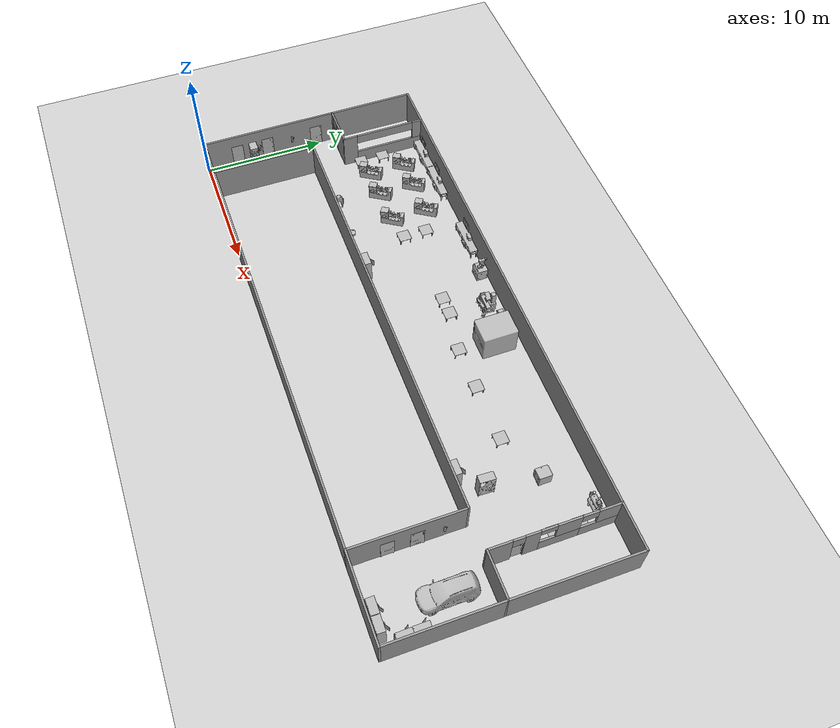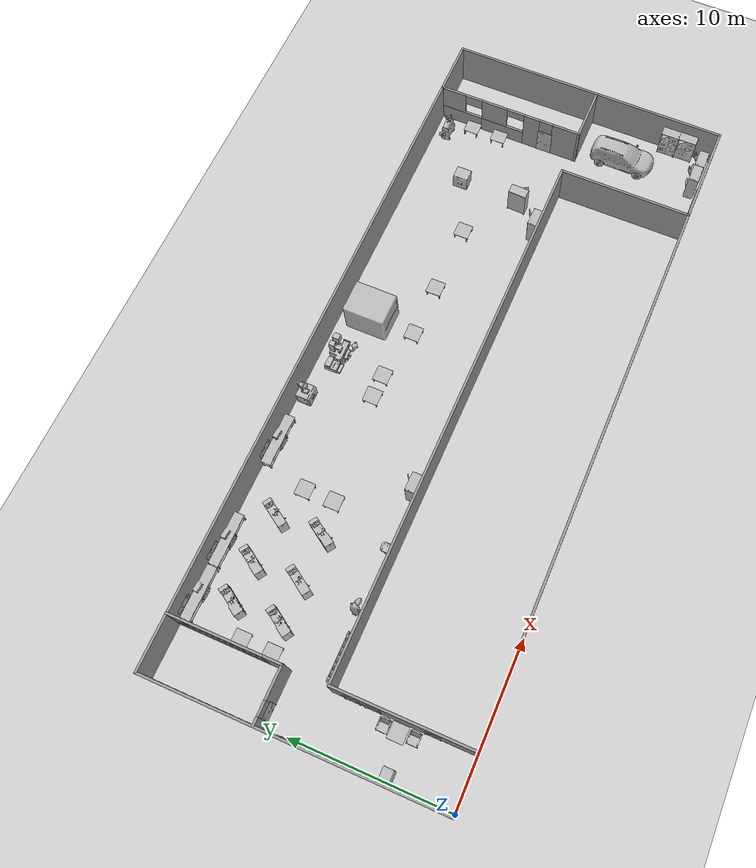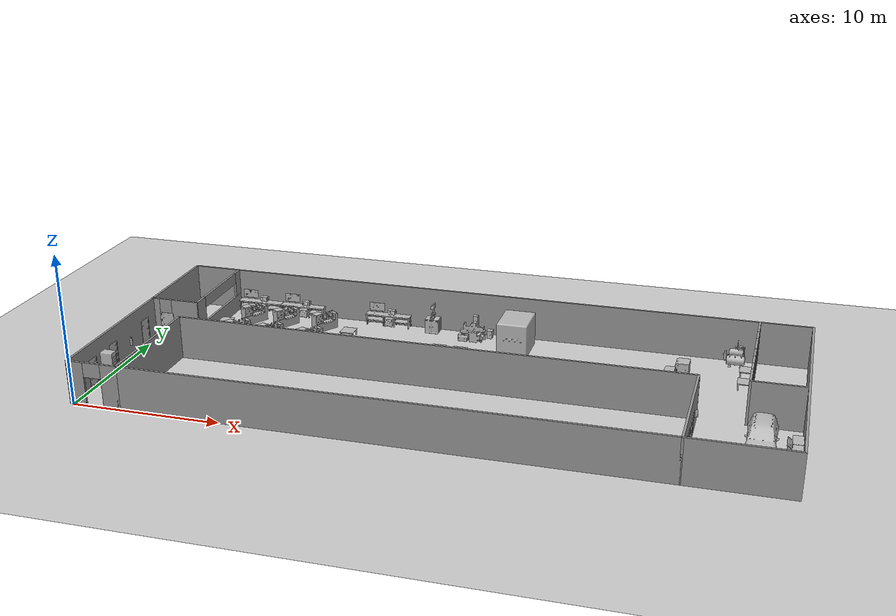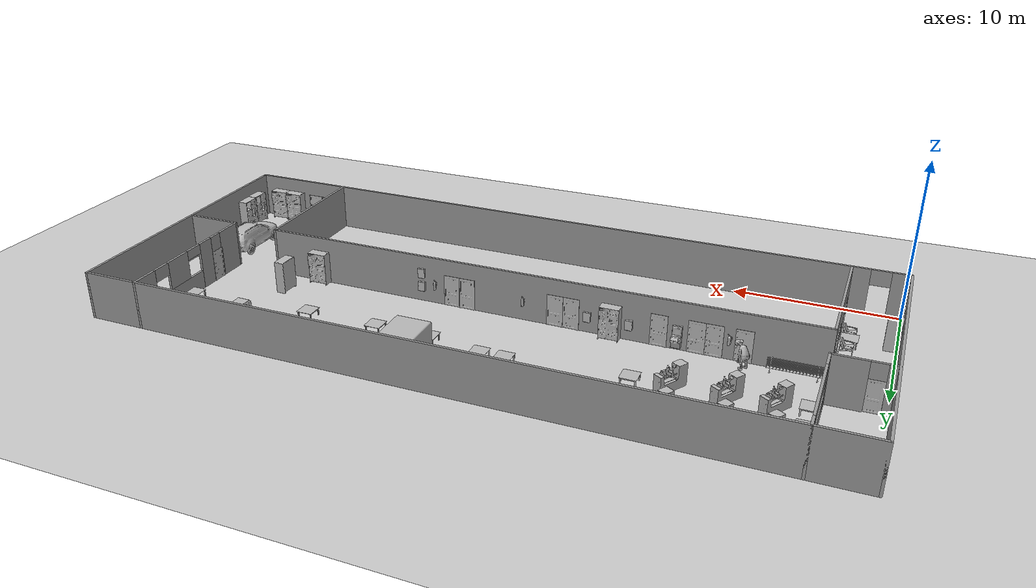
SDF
<sdf version="1.7">
 <world name="default">
  <light name="sun" type="directional">
   <pose>0 0 10 0 -0 0</pose>
   <diffuse>0.8 0.8 0.8 1</diffuse>
   <specular>0.2 0.2 0.2 1</specular>
   <attenuation>
    <range>1000</range>
    <constant>0.9</constant>
    <linear>0.01</linear>
    <quadratic>0.001</quadratic>
   </attenuation>
   <direction>-0.5 0.1 -0.9</direction>
   <spot><inner_angle>0</inner_angle><outer_angle>0</outer_angle><falloff>0</falloff></spot>
  </light>
  <model name="ground_plane">
   <static>1</static>
   <link name="link">
    <collision name="collision">
     <geometry><plane><normal>0 0 1</normal><size>100 100</size></plane></geometry>
     <surface>
      <contact><collide_bitmask>65535</collide_bitmask></contact>
      <friction><ode><mu>100</mu><mu2>50</mu2></ode></friction>
     </surface>
    </collision>
    <visual name="visual">
     <cast_shadows>0</cast_shadows>
     <geometry><plane><normal>0 0 1</normal><size>100 100</size></plane></geometry>
     <material>
      <script><uri>file://media/materials/scripts/gazebo.material</uri><name>Gazebo/Grey</name></script>
     </material>
    </visual>
   </link>
  </model>
  <gravity>0 0 -9.8</gravity>
  <magnetic_field>6e-06 2.3e-05 -4.2e-05</magnetic_field>
  <atmosphere type="adiabatic"/>
  <physics type="ode">
   <max_step_size>0.001</max_step_size>
   <real_time_factor>1</real_time_factor>
   <real_time_update_rate>1000</real_time_update_rate>
  </physics>
  <scene><ambient>0.4 0.4 0.4 1</ambient><background>0.7 0.7 0.7 1</background><shadows>1</shadows></scene>
  <spherical_coordinates>
   <surface_model>EARTH_WGS84</surface_model>
   <latitude_deg>0</latitude_deg>
   <longitude_deg>0</longitude_deg>
   <elevation>0</elevation>
   <heading_deg>0</heading_deg>
  </spherical_coordinates>
  <model name="laboratótio_de_usinagem_modelo">
   <pose>22.3264 9.2334 0 0 -0 0</pose>
   <link name="Wall_11">
    <collision name="Wall_11_Collision">
     <geometry><box><size>18.5 0.15 3</size></box></geometry>
     <pose>0 0 1.5 0 -0 0</pose>
    </collision>
    <visual name="Wall_11_Visual">
     <pose>0 0 1.5 0 -0 0</pose>
     <geometry><box><size>18.5 0.15 3</size></box></geometry>
     <material>
      <script><uri>file://media/materials/scripts/gazebo.material</uri><name>Gazebo/Grey</name></script>
      <ambient>1 1 1 1</ambient>
     </material>
     <meta><layer>0</layer></meta>
    </visual>
    <pose>22.5 0 0 0 -0 -1.5708</pose>
   </link>
   <link name="Wall_13">
    <collision name="Wall_13_Collision">
     <geometry><box><size>6.75 0.15 3</size></box></geometry>
     <pose>0 0 1.5 0 -0 0</pose>
    </collision>
    <visual name="Wall_13_Visual">
     <pose>0 0 1.5 0 -0 0</pose>
     <geometry><box><size>6.75 0.15 3</size></box></geometry>
     <material>
      <script><uri>file://media/materials/scripts/gazebo.material</uri><name>Gazebo/Grey</name></script>
      <ambient>1 1 1 1</ambient>
     </material>
     <meta><layer>0</layer></meta>
    </visual>
    <pose>19.2 -9.175 0 0 -0 3.14159</pose>
   </link>
   <link name="Wall_15">
    <collision name="Wall_15_Collision">
     <geometry><box><size>8.75 0.15 3</size></box></geometry>
     <pose>0 0 1.5 0 -0 0</pose>
    </collision>
    <visual name="Wall_15_Visual">
     <pose>0 0 1.5 0 -0 0</pose>
     <geometry><box><size>8.75 0.15 3</size></box></geometry>
     <material>
      <script><uri>file://media/materials/scripts/gazebo.material</uri><name>Gazebo/Grey</name></script>
      <ambient>1 1 1 1</ambient>
     </material>
     <meta><layer>0</layer></meta>
    </visual>
    <pose>15.9 -4.875 0 0 -0 1.5708</pose>
   </link>
   <link name="Wall_17">
    <collision name="Wall_17_Collision">
     <geometry><box><size>35.15 0.15 3</size></box></geometry>
     <pose>0 0 1.5 0 -0 0</pose>
    </collision>
    <visual name="Wall_17_Visual">
     <pose>0 0 1.5 0 -0 0</pose>
     <geometry><box><size>35.15 0.15 3</size></box></geometry>
     <material>
      <script><uri>file://media/materials/scripts/gazebo.material</uri><name>Gazebo/Grey</name></script>
      <ambient>1 1 1 1</ambient>
     </material>
     <meta><layer>0</layer></meta>
    </visual>
    <pose>-1.6 -0.575 0 0 -0 3.14159</pose>
   </link>
   <link name="Wall_19">
    <collision name="Wall_19_Collision">
     <geometry><box><size>35.15 0.15 3</size></box></geometry>
     <pose>0 0 1.5 0 -0 0</pose>
    </collision>
    <visual name="Wall_19_Visual">
     <pose>0 0 1.5 0 -0 0</pose>
     <geometry><box><size>35.15 0.15 3</size></box></geometry>
     <material>
      <script><uri>file://media/materials/scripts/gazebo.material</uri><name>Gazebo/Grey</name></script>
      <ambient>1 1 1 1</ambient>
     </material>
     <meta><layer>0</layer></meta>
    </visual>
    <pose>-1.6 -9.175 0 0 -0 0</pose>
   </link>
   <link name="Wall_21">
    <pose>-20.8 2.175 0 0 -0 0</pose>
    <visual name="Wall_21_Visual_0">
     <pose>-1.47924 0 1.5 0 -0 0</pose>
     <geometry><box><size>0.591518 0.15 3</size></box></geometry>
     <material>
      <script><uri>file://media/materials/scripts/gazebo.material</uri><name>Gazebo/Grey</name></script>
      <ambient>1 1 1 1</ambient>
     </material>
     <meta><layer>0</layer></meta>
    </visual>
    <collision name="Wall_21_Collision_0">
     <geometry><box><size>0.591518 0.15 3</size></box></geometry>
     <pose>-1.47924 0 1.5 0 -0 0</pose>
    </collision>
    <visual name="Wall_21_Visual_1">
     <pose>0.745759 0 1.5 0 -0 0</pose>
     <geometry><box><size>2.05848 0.15 3</size></box></geometry>
     <material>
      <script><uri>file://media/materials/scripts/gazebo.material</uri><name>Gazebo/Grey</name></script>
      <ambient>1 1 1 1</ambient>
     </material>
     <meta><layer>0</layer></meta>
    </visual>
    <collision name="Wall_21_Collision_1">
     <geometry><box><size>2.05848 0.15 3</size></box></geometry>
     <pose>0.745759 0 1.5 0 -0 0</pose>
    </collision>
    <visual name="Wall_21_Visual_2">
     <pose>-0.733482 0 2.5 0 -0 0</pose>
     <geometry><box><size>0.9 0.15 1</size></box></geometry>
     <material>
      <script><uri>file://media/materials/scripts/gazebo.material</uri><name>Gazebo/Grey</name></script>
      <ambient>1 1 1 1</ambient>
     </material>
     <meta><layer>0</layer></meta>
    </visual>
    <collision name="Wall_21_Collision_2">
     <geometry><box><size>0.9 0.15 1</size></box></geometry>
     <pose>-0.733482 0 2.5 0 -0 0</pose>
    </collision>
   </link>
   <link name="Wall_23">
    <pose>-19.1 5.675 0 0 -0 1.5708</pose>
    <visual name="Wall_23_Visual_0">
     <pose>-2.9625 0 1.5 0 -0 0</pose>
     <geometry><box><size>1.225 0.15 3</size></box></geometry>
     <material>
      <script><uri>file://media/materials/scripts/gazebo.material</uri><name>Gazebo/Grey</name></script>
      <ambient>1 1 1 1</ambient>
     </material>
     <meta><layer>0</layer></meta>
    </visual>
    <collision name="Wall_23_Collision_0">
     <geometry><box><size>1.225 0.15 3</size></box></geometry>
     <pose>-2.9625 0 1.5 0 -0 0</pose>
    </collision>
    <visual name="Wall_23_Visual_1">
     <pose>0.6125 0 0.6 0 -0 0</pose>
     <geometry><box><size>5.925 0.15 1.2</size></box></geometry>
     <material>
      <script><uri>file://media/materials/scripts/gazebo.material</uri><name>Gazebo/Grey</name></script>
      <ambient>1 1 1 1</ambient>
     </material>
     <meta><layer>0</layer></meta>
    </visual>
    <collision name="Wall_23_Collision_1">
     <geometry><box><size>5.925 0.15 1.2</size></box></geometry>
     <pose>0.6125 0 0.6 0 -0 0</pose>
    </collision>
    <visual name="Wall_23_Visual_2">
     <pose>3.1125 0 2.1 0 -0 0</pose>
     <geometry><box><size>0.925 0.15 1.8</size></box></geometry>
     <material>
      <script><uri>file://media/materials/scripts/gazebo.material</uri><name>Gazebo/Grey</name></script>
      <ambient>1 1 1 1</ambient>
     </material>
     <meta><layer>0</layer></meta>
    </visual>
    <collision name="Wall_23_Collision_2">
     <geometry><box><size>0.925 0.15 1.8</size></box></geometry>
     <pose>3.1125 0 2.1 0 -0 0</pose>
    </collision>
    <visual name="Wall_23_Visual_3">
     <pose>0.15 0 2.6 0 -0 0</pose>
     <geometry><box><size>5 0.15 0.8</size></box></geometry>
     <material>
      <script><uri>file://media/materials/scripts/gazebo.material</uri><name>Gazebo/Grey</name></script>
      <ambient>1 1 1 1</ambient>
     </material>
     <meta><layer>0</layer></meta>
    </visual>
    <collision name="Wall_23_Collision_3">
     <geometry><box><size>5 0.15 0.8</size></box></geometry>
     <pose>0.15 0 2.6 0 -0 0</pose>
    </collision>
   </link>
   <link name="Wall_25">
    <collision name="Wall_25_Collision">
     <geometry><box><size>3.65 0.15 3</size></box></geometry>
     <pose>0 0 1.5 0 -0 0</pose>
    </collision>
    <visual name="Wall_25_Visual">
     <pose>0 0 1.5 0 -0 0</pose>
     <geometry><box><size>3.65 0.15 3</size></box></geometry>
     <material>
      <script><uri>file://media/materials/scripts/gazebo.material</uri><name>Gazebo/Grey</name></script>
      <ambient>1 1 1 1</ambient>
     </material>
     <meta><layer>0</layer></meta>
    </visual>
    <pose>20.75 -0.575 0 0 -0 3.14159</pose>
   </link>
   <link name="Wall_27">
    <pose>19 4.3 0 0 -0 1.5708</pose>
    <visual name="Wall_27_Visual_0">
     <pose>-3.9989 0 1.5 0 -0 0</pose>
     <geometry><box><size>1.90221 0.15 3</size></box></geometry>
     <material>
      <script><uri>file://media/materials/scripts/gazebo.material</uri><name>Gazebo/Grey</name></script>
      <ambient>1 1 1 1</ambient>
     </material>
     <meta><layer>0</layer></meta>
    </visual>
    <collision name="Wall_27_Collision_0">
     <geometry><box><size>1.90221 0.15 3</size></box></geometry>
     <pose>-3.9989 0 1.5 0 -0 0</pose>
    </collision>
    <visual name="Wall_27_Visual_1">
     <pose>-1.58963 0 1.5 0 -0 0</pose>
     <geometry><box><size>1.11632 0.15 3</size></box></geometry>
     <material>
      <script><uri>file://media/materials/scripts/gazebo.material</uri><name>Gazebo/Grey</name></script>
      <ambient>1 1 1 1</ambient>
     </material>
     <meta><layer>0</layer></meta>
    </visual>
    <collision name="Wall_27_Collision_1">
     <geometry><box><size>1.11632 0.15 3</size></box></geometry>
     <pose>-1.58963 0 1.5 0 -0 0</pose>
    </collision>
    <visual name="Wall_27_Visual_2">
     <pose>0.470975 0 0.6005 0 -0 0</pose>
     <geometry><box><size>3.00489 0.15 1.201</size></box></geometry>
     <material>
      <script><uri>file://media/materials/scripts/gazebo.material</uri><name>Gazebo/Grey</name></script>
      <ambient>1 1 1 1</ambient>
     </material>
     <meta><layer>0</layer></meta>
    </visual>
    <collision name="Wall_27_Collision_2">
     <geometry><box><size>3.00489 0.15 1.201</size></box></geometry>
     <pose>0.470975 0 0.6005 0 -0 0</pose>
    </collision>
    <visual name="Wall_27_Visual_3">
     <pose>3.46171 0 0.6005 0 -0 0</pose>
     <geometry><box><size>2.97658 0.15 1.201</size></box></geometry>
     <material>
      <script><uri>file://media/materials/scripts/gazebo.material</uri><name>Gazebo/Grey</name></script>
      <ambient>1 1 1 1</ambient>
     </material>
     <meta><layer>0</layer></meta>
    </visual>
    <collision name="Wall_27_Collision_3">
     <geometry><box><size>2.97658 0.15 1.201</size></box></geometry>
     <pose>3.46171 0 0.6005 0 -0 0</pose>
    </collision>
    <visual name="Wall_27_Visual_4">
     <pose>4.06171 0 2.1005 0 -0 0</pose>
     <geometry><box><size>1.77658 0.15 1.799</size></box></geometry>
     <material>
      <script><uri>file://media/materials/scripts/gazebo.material</uri><name>Gazebo/Grey</name></script>
      <ambient>1 1 1 1</ambient>
     </material>
     <meta><layer>0</layer></meta>
    </visual>
    <collision name="Wall_27_Collision_4">
     <geometry><box><size>1.77658 0.15 1.799</size></box></geometry>
     <pose>4.06171 0 2.1005 0 -0 0</pose>
    </collision>
    <visual name="Wall_27_Visual_5">
     <pose>1.07098 0 2.1005 0 -0 0</pose>
     <geometry><box><size>1.80489 0.15 1.799</size></box></geometry>
     <material>
      <script><uri>file://media/materials/scripts/gazebo.material</uri><name>Gazebo/Grey</name></script>
      <ambient>1 1 1 1</ambient>
     </material>
     <meta><layer>0</layer></meta>
    </visual>
    <collision name="Wall_27_Collision_5">
     <geometry><box><size>1.80489 0.15 1.799</size></box></geometry>
     <pose>1.07098 0 2.1005 0 -0 0</pose>
    </collision>
    <visual name="Wall_27_Visual_6">
     <pose>1.07098 0 2.1005 0 -0 0</pose>
     <geometry><box><size>1.80489 0.15 1.799</size></box></geometry>
     <material>
      <script><uri>file://media/materials/scripts/gazebo.material</uri><name>Gazebo/Grey</name></script>
      <ambient>1 1 1 1</ambient>
     </material>
     <meta><layer>0</layer></meta>
    </visual>
    <collision name="Wall_27_Collision_6">
     <geometry><box><size>1.80489 0.15 1.799</size></box></geometry>
     <pose>1.07098 0 2.1005 0 -0 0</pose>
    </collision>
    <visual name="Wall_27_Visual_7">
     <pose>-2.59779 0 2.5 0 -0 0</pose>
     <geometry><box><size>0.9 0.15 1</size></box></geometry>
     <material>
      <script><uri>file://media/materials/scripts/gazebo.material</uri><name>Gazebo/Grey</name></script>
      <ambient>1 1 1 1</ambient>
     </material>
     <meta><layer>0</layer></meta>
    </visual>
    <collision name="Wall_27_Collision_7">
     <geometry><box><size>0.9 0.15 1</size></box></geometry>
     <pose>-2.59779 0 2.5 0 -0 0</pose>
    </collision>
    <visual name="Wall_27_Visual_8">
     <pose>2.57342 0 2.6005 0 -0 0</pose>
     <geometry><box><size>1.2 0.15 0.799</size></box></geometry>
     <material>
      <script><uri>file://media/materials/scripts/gazebo.material</uri><name>Gazebo/Grey</name></script>
      <ambient>1 1 1 1</ambient>
     </material>
     <meta><layer>0</layer></meta>
    </visual>
    <collision name="Wall_27_Collision_8">
     <geometry><box><size>1.2 0.15 0.799</size></box></geometry>
     <pose>2.57342 0 2.6005 0 -0 0</pose>
    </collision>
    <visual name="Wall_27_Visual_9">
     <pose>2.57342 0 2.6005 0 -0 0</pose>
     <geometry><box><size>1.2 0.15 0.799</size></box></geometry>
     <material>
      <script><uri>file://media/materials/scripts/gazebo.material</uri><name>Gazebo/Grey</name></script>
      <ambient>1 1 1 1</ambient>
     </material>
     <meta><layer>0</layer></meta>
    </visual>
    <collision name="Wall_27_Collision_9">
     <geometry><box><size>1.2 0.15 0.799</size></box></geometry>
     <pose>2.57342 0 2.6005 0 -0 0</pose>
    </collision>
    <visual name="Wall_27_Visual_10">
     <pose>-0.431472 0 2.7005 0 -0 0</pose>
     <geometry><box><size>1.2 0.15 0.599</size></box></geometry>
     <material>
      <script><uri>file://media/materials/scripts/gazebo.material</uri><name>Gazebo/Grey</name></script>
      <ambient>1 1 1 1</ambient>
     </material>
     <meta><layer>0</layer></meta>
    </visual>
    <collision name="Wall_27_Collision_10">
     <geometry><box><size>1.2 0.15 0.599</size></box></geometry>
     <pose>-0.431472 0 2.7005 0 -0 0</pose>
    </collision>
   </link>
   <link name="Wall_3">
    <pose>-20.8 -9.175 0 0 -0 0</pose>
    <visual name="Wall_3_Visual_0">
     <pose>-1.18973 0 1.5 0 -0 0</pose>
     <geometry><box><size>1.17054 0.15 3</size></box></geometry>
     <material>
      <script><uri>file://media/materials/scripts/gazebo.material</uri><name>Gazebo/Grey</name></script>
      <ambient>1 1 1 1</ambient>
     </material>
     <meta><layer>0</layer></meta>
    </visual>
    <collision name="Wall_3_Collision_0">
     <geometry><box><size>1.17054 0.15 3</size></box></geometry>
     <pose>-1.18973 0 1.5 0 -0 0</pose>
    </collision>
    <visual name="Wall_3_Visual_1">
     <pose>1.18527 0 1.5 0 -0 0</pose>
     <geometry><box><size>1.17946 0.15 3</size></box></geometry>
     <material>
      <script><uri>file://media/materials/scripts/gazebo.material</uri><name>Gazebo/Grey</name></script>
      <ambient>1 1 1 1</ambient>
     </material>
     <meta><layer>0</layer></meta>
    </visual>
    <collision name="Wall_3_Collision_1">
     <geometry><box><size>1.17946 0.15 3</size></box></geometry>
     <pose>1.18527 0 1.5 0 -0 0</pose>
    </collision>
    <visual name="Wall_3_Visual_2">
     <pose>-0.00446 0 2.5 0 -0 0</pose>
     <geometry><box><size>1.2 0.15 1</size></box></geometry>
     <material>
      <script><uri>file://media/materials/scripts/gazebo.material</uri><name>Gazebo/Grey</name></script>
      <ambient>1 1 1 1</ambient>
     </material>
     <meta><layer>0</layer></meta>
    </visual>
    <collision name="Wall_3_Collision_2">
     <geometry><box><size>1.2 0.15 1</size></box></geometry>
     <pose>-0.00446 0 2.5 0 -0 0</pose>
    </collision>
   </link>
   <link name="Wall_5">
    <collision name="Wall_5_Collision">
     <geometry><box><size>8.75 0.15 3</size></box></geometry>
     <pose>0 0 1.5 0 -0 0</pose>
    </collision>
    <visual name="Wall_5_Visual">
     <pose>0 0 1.5 0 -0 0</pose>
     <geometry><box><size>8.75 0.15 3</size></box></geometry>
     <material>
      <script><uri>file://media/materials/scripts/gazebo.material</uri><name>Gazebo/Grey</name></script>
      <ambient>1 1 1 1</ambient>
     </material>
     <meta><layer>0</layer></meta>
    </visual>
    <pose>-19.1 -4.875 0 0 -0 1.5708</pose>
   </link>
   <link name="Wall_7">
    <collision name="Wall_7_Collision">
     <geometry><box><size>18.5 0.15 3</size></box></geometry>
     <pose>0 0 1.5 0 -0 0</pose>
    </collision>
    <visual name="Wall_7_Visual">
     <pose>0 0 1.5 0 -0 0</pose>
     <geometry><box><size>18.5 0.15 3</size></box></geometry>
     <material>
      <script><uri>file://media/materials/scripts/gazebo.material</uri><name>Gazebo/Grey</name></script>
      <ambient>1 1 1 1</ambient>
     </material>
     <meta><layer>0</layer></meta>
    </visual>
    <pose>-22.5 0 0 0 -0 1.5708</pose>
   </link>
   <link name="Wall_9">
    <collision name="Wall_9_Collision">
     <geometry><box><size>45.15 0.15 3</size></box></geometry>
     <pose>0 0 1.5 0 -0 0</pose>
    </collision>
    <visual name="Wall_9_Visual">
     <pose>0 0 1.5 0 -0 0</pose>
     <geometry><box><size>45.15 0.15 3</size></box></geometry>
     <material>
      <script><uri>file://media/materials/scripts/gazebo.material</uri><name>Gazebo/Grey</name></script>
      <ambient>1 1 1 1</ambient>
     </material>
     <meta><layer>0</layer></meta>
    </visual>
    <pose>0 9.175 0 0 -0 0</pose>
   </link>
   <static>1</static>
  </model>
  <model name="Torno Mecânico">
   <static>1</static>
   <link name="link">
    <collision name="collision">
     <geometry><mesh><uri>model://torno_mecanico/meshes/torno.stl</uri><scale>1 1 1</scale></mesh></geometry>
    </collision>
    <visual name="visual">
     <geometry><mesh><uri>model://torno_mecanico/meshes/torno.stl</uri><scale>1 1 1</scale></mesh></geometry>
    </visual>
   </link>
   <pose>5.5 13 0 0 -0 1</pose>
   <gazebo reference="link"><material>Gazebo/White</material></gazebo>
  </model>
  <model name="Torno Mecânico_clone">
   <static>1</static>
   <link name="link">
    <collision name="collision">
     <geometry><mesh><uri>model://torno_mecanico/meshes/torno.stl</uri><scale>1 1 1</scale></mesh></geometry>
    </collision>
    <visual name="visual">
     <geometry><mesh><uri>model://torno_mecanico/meshes/torno.stl</uri><scale>1 1 1</scale></mesh></geometry>
    </visual>
   </link>
   <pose>5.5 16 0 0 -0 1</pose>
   <gazebo reference="link"><material>Gazebo/White</material></gazebo>
  </model>
  <model name="Torno Mecânico_clone_clone">
   <static>1</static>
   <link name="link">
    <collision name="collision">
     <geometry><mesh><uri>model://torno_mecanico/meshes/torno.stl</uri><scale>1 1 1</scale></mesh></geometry>
    </collision>
    <visual name="visual">
     <geometry><mesh><uri>model://torno_mecanico/meshes/torno.stl</uri><scale>1 1 1</scale></mesh></geometry>
    </visual>
   </link>
   <pose>8 16 0 0 -0 1</pose>
   <gazebo reference="link"><material>Gazebo/White</material></gazebo>
  </model>
  <model name="Torno Mecânico_clone_clone_0">
   <static>1</static>
   <link name="link">
    <collision name="collision">
     <geometry><mesh><uri>model://torno_mecanico/meshes/torno.stl</uri><scale>1 1 1</scale></mesh></geometry>
    </collision>
    <visual name="visual">
     <geometry><mesh><uri>model://torno_mecanico/meshes/torno.stl</uri><scale>1 1 1</scale></mesh></geometry>
    </visual>
   </link>
   <pose>8 13 0 0 -0 1</pose>
   <gazebo reference="link"><material>Gazebo/White</material></gazebo>
  </model>
  <model name="Torno Mecânico_clone_clone_1">
   <static>1</static>
   <link name="link">
    <collision name="collision">
     <geometry><mesh><uri>model://torno_mecanico/meshes/torno.stl</uri><scale>1 1 1</scale></mesh></geometry>
    </collision>
    <visual name="visual">
     <geometry><mesh><uri>model://torno_mecanico/meshes/torno.stl</uri><scale>1 1 1</scale></mesh></geometry>
    </visual>
   </link>
   <pose>11 13 0 0 -0 1</pose>
   <gazebo reference="link"><material>Gazebo/White</material></gazebo>
  </model>
  <model name="Torno Mecânico_clone_clone_2">
   <static>1</static>
   <link name="link">
    <collision name="collision">
     <geometry><mesh><uri>model://torno_mecanico/meshes/torno.stl</uri><scale>1 1 1</scale></mesh></geometry>
    </collision>
    <visual name="visual">
     <geometry><mesh><uri>model://torno_mecanico/meshes/torno.stl</uri><scale>1 1 1</scale></mesh></geometry>
    </visual>
   </link>
   <pose>11 16 0 0 -0 1</pose>
   <gazebo reference="link"><material>Gazebo/White</material></gazebo>
  </model>
  <model name="Bancada">
   <static>1</static>
   <link name="link">
    <collision name="collision">
     <geometry><mesh><uri>model://bancada/meshes/bancada.stl</uri><scale>1 1 1</scale></mesh></geometry>
    </collision>
    <visual name="visual">
     <geometry><mesh><uri>model://bancada/meshes/bancada.stl</uri><scale>1 1 1</scale></mesh></geometry>
    </visual>
   </link>
   <pose>5 18.3 0 0 -0 0</pose>
   <gazebo reference="link"><material>Gazebo/White</material></gazebo>
  </model>
  <model name="Bancada_clone">
   <static>1</static>
   <link name="link">
    <collision name="collision">
     <geometry><mesh><uri>model://bancada/meshes/bancada.stl</uri><scale>1 1 1</scale></mesh></geometry>
    </collision>
    <visual name="visual">
     <geometry><mesh><uri>model://bancada/meshes/bancada.stl</uri><scale>1 1 1</scale></mesh></geometry>
    </visual>
   </link>
   <pose>8.35442 18.3 0 0 -0 0</pose>
   <gazebo reference="link"><material>Gazebo/White</material></gazebo>
  </model>
  <model name="Fresadora">
   <static>1</static>
   <link name="link">
    <collision name="collision">
     <geometry><mesh><uri>model://mesa_de_trabalho/meshes/mesa.stl</uri><scale>1 1 1</scale></mesh></geometry>
    </collision>
    <visual name="visual">
     <geometry><mesh><uri>model://mesa_de_trabalho/meshes/mesa.stl</uri><scale>1 1 1</scale></mesh></geometry>
    </visual>
   </link>
   <pose>3.7 12.7 0 0 -0 1.57</pose>
   <gazebo reference="link"><material>Gazebo/White</material></gazebo>
  </model>
  <model name="Fresadora_clone">
   <static>1</static>
   <link name="link">
    <collision name="collision">
     <geometry><mesh><uri>model://mesa_de_trabalho/meshes/mesa.stl</uri><scale>1 1 1</scale></mesh></geometry>
    </collision>
    <visual name="visual">
     <geometry><mesh><uri>model://mesa_de_trabalho/meshes/mesa.stl</uri><scale>1 1 1</scale></mesh></geometry>
    </visual>
   </link>
   <pose>3.69993 14.6555 0 0 -0 1.57</pose>
   <gazebo reference="link"><material>Gazebo/White</material></gazebo>
  </model>
  <model name="Fresadora_clone_clone">
   <static>1</static>
   <link name="link">
    <collision name="collision">
     <geometry><mesh><uri>model://mesa_de_trabalho/meshes/mesa.stl</uri><scale>1 1 1</scale></mesh></geometry>
    </collision>
    <visual name="visual">
     <geometry><mesh><uri>model://mesa_de_trabalho/meshes/mesa.stl</uri><scale>1 1 1</scale></mesh></geometry>
    </visual>
   </link>
   <pose>13 13.3 0 0 -0 1.57</pose>
   <gazebo reference="link"><material>Gazebo/White</material></gazebo>
  </model>
  <model name="Fresadora_clone_clone_0">
   <static>1</static>
   <link name="link">
    <collision name="collision">
     <geometry><mesh><uri>model://mesa_de_trabalho/meshes/mesa.stl</uri><scale>1 1 1</scale></mesh></geometry>
    </collision>
    <visual name="visual">
     <geometry><mesh><uri>model://mesa_de_trabalho/meshes/mesa.stl</uri><scale>1 1 1</scale></mesh></geometry>
    </visual>
   </link>
   <pose>12.9999 15.2159 0 0 -0 1.57</pose>
   <gazebo reference="link"><material>Gazebo/White</material></gazebo>
  </model>
  <model name="Bancada_clone_clone">
   <static>1</static>
   <link name="link">
    <collision name="collision">
     <geometry><mesh><uri>model://bancada/meshes/bancada.stl</uri><scale>1 1 1</scale></mesh></geometry>
    </collision>
    <visual name="visual">
     <geometry><mesh><uri>model://bancada/meshes/bancada.stl</uri><scale>1 1 1</scale></mesh></geometry>
    </visual>
   </link>
   <pose>15 18.3 0 0 -0 0</pose>
   <gazebo reference="link"><material>Gazebo/White</material></gazebo>
  </model>
  <model name="Fresadora_clone_clone_1">
   <static>1</static>
   <link name="link">
    <collision name="collision">
     <geometry><mesh><uri>model://mesa_de_trabalho/meshes/mesa.stl</uri><scale>1 1 1</scale></mesh></geometry>
    </collision>
    <visual name="visual">
     <geometry><mesh><uri>model://mesa_de_trabalho/meshes/mesa.stl</uri><scale>1 1 1</scale></mesh></geometry>
    </visual>
   </link>
   <pose>20 14 0 0 -0 1.57</pose>
   <gazebo reference="link"><material>Gazebo/White</material></gazebo>
  </model>
  <model name="Fresadora_clone_clone_1_clone">
   <static>1</static>
   <link name="link">
    <collision name="collision">
     <geometry><mesh><uri>model://mesa_de_trabalho/meshes/mesa.stl</uri><scale>1 1 1</scale></mesh></geometry>
    </collision>
    <visual name="visual">
     <geometry><mesh><uri>model://mesa_de_trabalho/meshes/mesa.stl</uri><scale>1 1 1</scale></mesh></geometry>
    </visual>
   </link>
   <pose>21.5 14 0 0 -0 1.57</pose>
   <gazebo reference="link"><material>Gazebo/White</material></gazebo>
  </model>
  <model name="Retifica">
   <static>1</static>
   <link name="link">
    <collision name="collision">
     <geometry><mesh><uri>model://retifica/meshes/retifica.stl</uri><scale>1 1 1</scale></mesh></geometry>
    </collision>
    <visual name="visual">
     <geometry><mesh><uri>model://retifica/meshes/retifica.stl</uri><scale>1 1 1</scale></mesh></geometry>
    </visual>
   </link>
   <pose>21.8 17.15 0 0 -0 0</pose>
   <gazebo reference="link"><material>Gazebo/White</material></gazebo>
  </model>
  <model name="Torno Mecânico_0">
   <static>1</static>
   <link name="link">
    <collision name="collision">
     <geometry>
      <mesh><uri>model://cortadora_a_laser/meshes/cortadora_laser.stl</uri><scale>1 1 1</scale></mesh>
     </geometry>
    </collision>
    <visual name="visual">
     <geometry>
      <mesh><uri>model://cortadora_a_laser/meshes/cortadora_laser.stl</uri><scale>1 1 1</scale></mesh>
     </geometry>
    </visual>
   </link>
   <pose>23.9 17.7 0 0 -0 0</pose>
   <gazebo reference="link"><material>Gazebo/White</material></gazebo>
  </model>
  <model name="Fresadora_0_clone_1">
   <static>1</static>
   <link name="link">
    <collision name="collision">
     <geometry><mesh><uri>model://mesa_de_trabalho/meshes/mesa.stl</uri><scale>1 1 1</scale></mesh></geometry>
    </collision>
    <visual name="visual">
     <geometry><mesh><uri>model://mesa_de_trabalho/meshes/mesa.stl</uri><scale>1 1 1</scale></mesh></geometry>
    </visual>
   </link>
   <pose>24.9 13.4 0 0 -0 0</pose>
   <gazebo reference="link"><material>Gazebo/White</material></gazebo>
  </model>
  <model name="Fresadora_0_clone_1_clone">
   <static>1</static>
   <link name="link">
    <collision name="collision">
     <geometry><mesh><uri>model://mesa_de_trabalho/meshes/mesa.stl</uri><scale>1 1 1</scale></mesh></geometry>
    </collision>
    <visual name="visual">
     <geometry><mesh><uri>model://mesa_de_trabalho/meshes/mesa.stl</uri><scale>1 1 1</scale></mesh></geometry>
    </visual>
   </link>
   <pose>28.4 13.4 0 0 -0 0</pose>
   <gazebo reference="link"><material>Gazebo/White</material></gazebo>
  </model>
  <model name="Fresadora_0_clone_1_clone_clone">
   <static>1</static>
   <link name="link">
    <collision name="collision">
     <geometry><mesh><uri>model://mesa_de_trabalho/meshes/mesa.stl</uri><scale>1 1 1</scale></mesh></geometry>
    </collision>
    <visual name="visual">
     <geometry><mesh><uri>model://mesa_de_trabalho/meshes/mesa.stl</uri><scale>1 1 1</scale></mesh></geometry>
    </visual>
   </link>
   <pose>33 13.4 0 0 -0 0</pose>
   <gazebo reference="link"><material>Gazebo/White</material></gazebo>
  </model>
  <model name="Compressor">
   <static>1</static>
   <link name="link">
    <collision name="collision">
     <geometry><mesh><uri>model://compressor/meshes/compressor.stl</uri><scale>1 1 1</scale></mesh></geometry>
    </collision>
    <visual name="visual">
     <geometry><mesh><uri>model://compressor/meshes/compressor.stl</uri><scale>1 1 1</scale></mesh></geometry>
    </visual>
   </link>
   <pose>39.9841 17.481 0 0 -0 0</pose>
   <gazebo reference="link"><material>Gazebo/White</material></gazebo>
  </model>
  <model name="Nixon">
   <static>1</static>
   <link name="link">
    <collision name="collision">
     <geometry><mesh><uri>model://nixon/meshes/nixon.stl</uri><scale>1 1 1</scale></mesh></geometry>
    </collision>
    <visual name="visual">
     <geometry><mesh><uri>model://nixon/meshes/nixon.stl</uri><scale>1 1 1</scale></mesh></geometry>
    </visual>
   </link>
   <pose>7.66262 9.44622 0 0 0 -0.184034</pose>
   <gazebo reference="link"><material>Gazebo/White</material></gazebo>
  </model>
  <model name="Porta">
   <static>1</static>
   <link name="link">
    <collision name="collision">
     <geometry><mesh><uri>model://porta/meshes/porta.stl</uri><scale>1 1 1</scale></mesh></geometry>
    </collision>
    <visual name="visual">
     <geometry><mesh><uri>model://porta/meshes/porta.stl</uri><scale>1 1 1</scale></mesh></geometry>
    </visual>
   </link>
   <pose>0.824823 11.3641 0 0 -0 0</pose>
   <gazebo reference="link"><material>Gazebo/White</material></gazebo>
  </model>
  <model name="Porta_0">
   <static>1</static>
   <link name="link">
    <collision name="collision">
     <geometry><mesh><uri>model://porta/meshes/porta.stl</uri><scale>1 1 1</scale></mesh></geometry>
    </collision>
    <visual name="visual">
     <geometry><mesh><uri>model://porta/meshes/porta.stl</uri><scale>1 1 1</scale></mesh></geometry>
    </visual>
   </link>
   <pose>-0.088843 2.7244 0 0 -0 1.57</pose>
   <gazebo reference="link"><material>Gazebo/White</material></gazebo>
  </model>
  <model name="Porta_0_clone">
   <static>1</static>
   <link name="link">
    <collision name="collision">
     <geometry><mesh><uri>model://porta/meshes/porta.stl</uri><scale>1 1 1</scale></mesh></geometry>
    </collision>
    <visual name="visual">
     <geometry><mesh><uri>model://porta/meshes/porta.stl</uri><scale>1 1 1</scale></mesh></geometry>
    </visual>
   </link>
   <pose>-0.104683 9.7695 0 0 -0 1.57</pose>
   <gazebo reference="link"><material>Gazebo/White</material></gazebo>
  </model>
  <model name="Porta_0_clone_1">
   <static>1</static>
   <link name="link">
    <collision name="collision">
     <geometry><mesh><uri>model://porta/meshes/porta.stl</uri><scale>1 1 1</scale></mesh></geometry>
    </collision>
    <visual name="visual">
     <geometry><mesh><uri>model://porta/meshes/porta.stl</uri><scale>1 1 1</scale></mesh></geometry>
    </visual>
   </link>
   <pose>3.15838 2.66482 0 0 -0 1.57</pose>
   <gazebo reference="link"><material>Gazebo/White</material></gazebo>
  </model>
  <model name="Porta_0_clone_1_clone">
   <static>1</static>
   <link name="link">
    <collision name="collision">
     <geometry><mesh><uri>model://porta/meshes/porta.stl</uri><scale>1 1 1</scale></mesh></geometry>
    </collision>
    <visual name="visual">
     <geometry><mesh><uri>model://porta/meshes/porta.stl</uri><scale>1 1 1</scale></mesh></geometry>
    </visual>
   </link>
   <pose>3.15 6.23849 0 0 -0 1.57</pose>
   <gazebo reference="link"><material>Gazebo/White</material></gazebo>
  </model>
  <model name="Porta_0_clone_1_clone_clone">
   <static>1</static>
   <link name="link">
    <collision name="collision">
     <geometry><mesh><uri>model://porta/meshes/porta.stl</uri><scale>1 1 1</scale></mesh></geometry>
    </collision>
    <visual name="visual">
     <geometry><mesh><uri>model://porta/meshes/porta.stl</uri><scale>1 1 1</scale></mesh></geometry>
    </visual>
   </link>
   <pose>3.15 7.4407 0 0 -0 1.57</pose>
   <gazebo reference="link"><material>Gazebo/White</material></gazebo>
  </model>
  <model name="Porta_clone">
   <static>1</static>
   <link name="link">
    <collision name="collision">
     <geometry><mesh><uri>model://porta/meshes/porta.stl</uri><scale>1 1 1</scale></mesh></geometry>
    </collision>
    <visual name="visual">
     <geometry><mesh><uri>model://porta/meshes/porta.stl</uri><scale>1 1 1</scale></mesh></geometry>
    </visual>
   </link>
   <pose>7.84581 8.72719 0 0 -0 0</pose>
   <gazebo reference="link"><material>Gazebo/White</material></gazebo>
  </model>
  <model name="Porta_clone_clone">
   <static>1</static>
   <link name="link">
    <collision name="collision">
     <geometry><mesh><uri>model://porta/meshes/porta.stl</uri><scale>1 1 1</scale></mesh></geometry>
    </collision>
    <visual name="visual">
     <geometry><mesh><uri>model://porta/meshes/porta.stl</uri><scale>1 1 1</scale></mesh></geometry>
    </visual>
   </link>
   <pose>9.49321 8.73 0 0 -0 0</pose>
   <gazebo reference="link"><material>Gazebo/White</material></gazebo>
  </model>
  <model name="Porta_clone_clone_clone">
   <static>1</static>
   <link name="link">
    <collision name="collision">
     <geometry><mesh><uri>model://porta/meshes/porta.stl</uri><scale>1 1 1</scale></mesh></geometry>
    </collision>
    <visual name="visual">
     <geometry><mesh><uri>model://porta/meshes/porta.stl</uri><scale>1 1 1</scale></mesh></geometry>
    </visual>
   </link>
   <pose>10.4997 8.73 0 0 -0 3.14</pose>
   <gazebo reference="link"><material>Gazebo/White</material></gazebo>
  </model>
  <model name="Porta_clone_clone_clone_clone">
   <static>1</static>
   <link name="link">
    <collision name="collision">
     <geometry><mesh><uri>model://porta/meshes/porta.stl</uri><scale>1 1 1</scale></mesh></geometry>
    </collision>
    <visual name="visual">
     <geometry><mesh><uri>model://porta/meshes/porta.stl</uri><scale>1 1 1</scale></mesh></geometry>
    </visual>
   </link>
   <pose>12.6702 8.73 0 0 -0 3.14</pose>
   <gazebo reference="link"><material>Gazebo/White</material></gazebo>
  </model>
  <model name="Porta_clone_clone_clone_0">
   <static>1</static>
   <link name="link">
    <collision name="collision">
     <geometry><mesh><uri>model://porta/meshes/porta.stl</uri><scale>1 1 1</scale></mesh></geometry>
    </collision>
    <visual name="visual">
     <geometry><mesh><uri>model://porta/meshes/porta.stl</uri><scale>1 1 1</scale></mesh></geometry>
    </visual>
   </link>
   <pose>17.9319 8.73 0 0 -0 0</pose>
   <gazebo reference="link"><material>Gazebo/White</material></gazebo>
  </model>
  <model name="Porta_clone_clone_clone_clone_0">
   <static>1</static>
   <link name="link">
    <collision name="collision">
     <geometry><mesh><uri>model://porta/meshes/porta.stl</uri><scale>1 1 1</scale></mesh></geometry>
    </collision>
    <visual name="visual">
     <geometry><mesh><uri>model://porta/meshes/porta.stl</uri><scale>1 1 1</scale></mesh></geometry>
    </visual>
   </link>
   <pose>18.9364 8.73 0 0 -0 3.14</pose>
   <gazebo reference="link"><material>Gazebo/White</material></gazebo>
  </model>
  <model name="Porta_clone_clone_clone_0_clone">
   <static>1</static>
   <link name="link">
    <collision name="collision">
     <geometry><mesh><uri>model://porta/meshes/porta.stl</uri><scale>1 1 1</scale></mesh></geometry>
    </collision>
    <visual name="visual">
     <geometry><mesh><uri>model://porta/meshes/porta.stl</uri><scale>1 1 1</scale></mesh></geometry>
    </visual>
   </link>
   <pose>24.5969 8.73325 0 0 -0 0</pose>
   <gazebo reference="link"><material>Gazebo/White</material></gazebo>
  </model>
  <model name="Porta_clone_clone_clone_clone_0_clone">
   <static>1</static>
   <link name="link">
    <collision name="collision">
     <geometry><mesh><uri>model://porta/meshes/porta.stl</uri><scale>1 1 1</scale></mesh></geometry>
    </collision>
    <visual name="visual">
     <geometry><mesh><uri>model://porta/meshes/porta.stl</uri><scale>1 1 1</scale></mesh></geometry>
    </visual>
   </link>
   <pose>25.6213 8.72901 0 0 -0 3.14</pose>
   <gazebo reference="link"><material>Gazebo/White</material></gazebo>
  </model>
  <model name="Porta_0_clone_0_clone">
   <static>1</static>
   <link name="link">
    <collision name="collision">
     <geometry><mesh><uri>model://porta/meshes/porta.stl</uri><scale>1 1 1</scale></mesh></geometry>
    </collision>
    <visual name="visual">
     <geometry><mesh><uri>model://porta/meshes/porta.stl</uri><scale>1 1 1</scale></mesh></geometry>
    </visual>
   </link>
   <pose>41.262 10.9256 0 0 -0 1.57</pose>
   <gazebo reference="link"><material>Gazebo/White</material></gazebo>
  </model>
  <model name="Porta_0_clone_0_clone_clone">
   <static>1</static>
   <link name="link">
    <collision name="collision">
     <geometry><mesh><uri>model://porta/meshes/porta.stl</uri><scale>1 1 1</scale></mesh></geometry>
    </collision>
    <visual name="visual">
     <geometry><mesh><uri>model://porta/meshes/porta.stl</uri><scale>1 1 1</scale></mesh></geometry>
    </visual>
   </link>
   <pose>38.3014 2.90343 0 0 -0 1.57</pose>
   <gazebo reference="link"><material>Gazebo/White</material></gazebo>
  </model>
  <model name="Porta_0_clone_0_clone_clone_clone">
   <static>1</static>
   <link name="link">
    <collision name="collision">
     <geometry><mesh><uri>model://porta/meshes/porta.stl</uri><scale>1 1 1</scale></mesh></geometry>
    </collision>
    <visual name="visual">
     <geometry><mesh><uri>model://porta/meshes/porta.stl</uri><scale>1 1 1</scale></mesh></geometry>
    </visual>
   </link>
   <pose>38.3 5.02926 0 0 -0 1.57</pose>
   <gazebo reference="link"><material>Gazebo/White</material></gazebo>
  </model>
  <model name="Porta_clone_clone_clone_clone_0_clone_0">
   <static>1</static>
   <link name="link">
    <collision name="collision">
     <geometry><mesh><uri>model://porta/meshes/porta.stl</uri><scale>1 1 1</scale></mesh></geometry>
    </collision>
    <visual name="visual">
     <geometry><mesh><uri>model://porta/meshes/porta.stl</uri><scale>1 1 1</scale></mesh></geometry>
    </visual>
   </link>
   <pose>40.5679 0.131979 0 0 -0 3.14</pose>
   <gazebo reference="link"><material>Gazebo/White</material></gazebo>
  </model>
  <model name="Porta_clone_clone_clone_0_clone_clone">
   <static>1</static>
   <link name="link">
    <collision name="collision">
     <geometry><mesh><uri>model://porta/meshes/porta.stl</uri><scale>1 1 1</scale></mesh></geometry>
    </collision>
    <visual name="visual">
     <geometry><mesh><uri>model://porta/meshes/porta.stl</uri><scale>1 1 1</scale></mesh></geometry>
    </visual>
   </link>
   <pose>39.5665 0.13 0 0 -0 0</pose>
   <gazebo reference="link"><material>Gazebo/White</material></gazebo>
  </model>
  <model name="Porta_1">
   <static>1</static>
   <link name="link">
    <collision name="collision">
     <geometry><mesh><uri>model://porta/meshes/porta.stl</uri><scale>1 1 1</scale></mesh></geometry>
    </collision>
    <visual name="visual">
     <geometry><mesh><uri>model://porta/meshes/porta.stl</uri><scale>1 1 1</scale></mesh></geometry>
    </visual>
   </link>
   <pose>0.831607 11.3751 0 0 -0 0</pose>
   <gazebo reference="link"><material>Gazebo/White</material></gazebo>
  </model>
  <model name="Porta_2_clone">
   <static>1</static>
   <link name="link">
    <collision name="collision">
     <geometry><mesh><uri>model://porta/meshes/porta.stl</uri><scale>1 1 1</scale></mesh></geometry>
    </collision>
    <visual name="visual">
     <geometry><mesh><uri>model://porta/meshes/porta.stl</uri><scale>1 1 1</scale></mesh></geometry>
    </visual>
   </link>
   <pose>-0.11 5.40777 0 0 -0 1.57</pose>
   <gazebo reference="link"><material>Gazebo/White</material></gazebo>
  </model>
  <model name="Duster_1">
   <static>1</static>
   <link name="link">
    <collision name="collision">
     <geometry><mesh><uri>model://duster/meshes/duster.stl</uri><scale>1 1 1</scale></mesh></geometry>
    </collision>
    <visual name="visual">
     <geometry><mesh><uri>model://duster/meshes/duster.stl</uri><scale>1 1 1</scale></mesh></geometry>
    </visual>
   </link>
   <pose>42.3758 5.73978 0 0 -0 0</pose>
   <gazebo reference="link"><material>Gazebo/White</material></gazebo>
  </model>
  <model name="Mesa">
   <static>1</static>
   <link name="link">
    <collision name="collision">
     <geometry><mesh><uri>model://mesa/meshes/mesa.stl</uri><scale>1 1 1</scale></mesh></geometry>
    </collision>
    <visual name="visual">
     <geometry><mesh><uri>model://mesa/meshes/mesa.stl</uri><scale>1 1 1</scale></mesh></geometry>
    </visual>
   </link>
   <pose>2.58471 4.47164 0 0 -0 0</pose>
   <gazebo reference="link"><material>Gazebo/White</material></gazebo>
  </model>
  <model name="Sofa 2">
   <static>1</static>
   <link name="link">
    <collision name="collision">
     <geometry><mesh><uri>model://sofa2/meshes/sofa2.stl</uri><scale>1 1 1</scale></mesh></geometry>
    </collision>
    <visual name="visual">
     <geometry><mesh><uri>model://sofa2/meshes/sofa2.stl</uri><scale>1 1 1</scale></mesh></geometry>
    </visual>
   </link>
   <pose>3.06375 3.88553 0 0 -0 1.56652</pose>
   <gazebo reference="link"><material>Gazebo/White</material></gazebo>
  </model>
  <model name="Sofa 2_clone">
   <static>1</static>
   <link name="link">
    <collision name="collision">
     <geometry><mesh><uri>model://sofa2/meshes/sofa2.stl</uri><scale>1 1 1</scale></mesh></geometry>
    </collision>
    <visual name="visual">
     <geometry><mesh><uri>model://sofa2/meshes/sofa2.stl</uri><scale>1 1 1</scale></mesh></geometry>
    </visual>
   </link>
   <pose>3.05544 5.70367 0 0 -0 1.56652</pose>
   <gazebo reference="link"><material>Gazebo/White</material></gazebo>
  </model>
  <model name="Banco">
   <static>1</static>
   <link name="link">
    <collision name="collision">
     <geometry><mesh><uri>model://banco/meshes/banco.stl</uri><scale>1 1 1</scale></mesh></geometry>
    </collision>
    <visual name="visual">
     <geometry><mesh><uri>model://banco/meshes/banco.stl</uri><scale>1 1 1</scale></mesh></geometry>
    </visual>
   </link>
   <pose>4.99962 9.04699 0 0 0 -3.14</pose>
   <gazebo reference="link"><material>Gazebo/White</material></gazebo>
  </model>
  <model name="Bebedouro">
   <static>1</static>
   <link name="link">
    <collision name="collision">
     <geometry><mesh><uri>model://bebedouro/meshes/bebedouro.stl</uri><scale>1 1 1</scale></mesh></geometry>
    </collision>
    <visual name="visual">
     <geometry><mesh><uri>model://bebedouro/meshes/bebedouro.stl</uri><scale>1 1 1</scale></mesh></geometry>
    </visual>
   </link>
   <pose>11.5699 8.83984 -0.41192 0 -0 3.14</pose>
   <gazebo reference="link"><material>Gazebo/White</material></gazebo>
  </model>
  <model name="Armario">
   <static>1</static>
   <link name="link">
    <collision name="collision">
     <geometry><mesh><uri>model://armario/meshes/armario.stl</uri><scale>1 1 1</scale></mesh></geometry>
    </collision>
    <visual name="visual">
     <geometry><mesh><uri>model://armario/meshes/armario.stl</uri><scale>1 1 1</scale></mesh></geometry>
    </visual>
   </link>
   <pose>15.503 9.15973 0 0 -0 3.14</pose>
   <gazebo reference="link"><material>Gazebo/White</material></gazebo>
  </model>
  <model name="Armario_clone">
   <static>1</static>
   <link name="link">
    <collision name="collision">
     <geometry><mesh><uri>model://armario/meshes/armario.stl</uri><scale>1 1 1</scale></mesh></geometry>
    </collision>
    <visual name="visual">
     <geometry><mesh><uri>model://armario/meshes/armario.stl</uri><scale>1 1 1</scale></mesh></geometry>
    </visual>
   </link>
   <pose>34.8504 9.10614 0 0 -0 3.14</pose>
   <gazebo reference="link"><material>Gazebo/White</material></gazebo>
  </model>
  <model name="Armario_clone_clone">
   <static>1</static>
   <link name="link">
    <collision name="collision">
     <geometry><mesh><uri>model://armario/meshes/armario.stl</uri><scale>1 1 1</scale></mesh></geometry>
    </collision>
    <visual name="visual">
     <geometry><mesh><uri>model://armario/meshes/armario.stl</uri><scale>1 1 1</scale></mesh></geometry>
    </visual>
   </link>
   <pose>36.2225 10.7733 0 0 -0 1.52815</pose>
   <gazebo reference="link"><material>Gazebo/White</material></gazebo>
  </model>
  <model name="Fresadora_clone_0">
   <static>1</static>
   <link name="link">
    <collision name="collision">
     <geometry><mesh><uri>model://mesa_de_trabalho/meshes/mesa.stl</uri><scale>1 1 1</scale></mesh></geometry>
    </collision>
    <visual name="visual">
     <geometry><mesh><uri>model://mesa_de_trabalho/meshes/mesa.stl</uri><scale>1 1 1</scale></mesh></geometry>
    </visual>
   </link>
   <pose>40.8709 15.9614 0 0 -0 1.57</pose>
   <gazebo reference="link"><material>Gazebo/White</material></gazebo>
  </model>
  <model name="Fresadora_clone_1">
   <static>1</static>
   <link name="link">
    <collision name="collision">
     <geometry><mesh><uri>model://mesa_de_trabalho/meshes/mesa.stl</uri><scale>1 1 1</scale></mesh></geometry>
    </collision>
    <visual name="visual">
     <geometry><mesh><uri>model://mesa_de_trabalho/meshes/mesa.stl</uri><scale>1 1 1</scale></mesh></geometry>
    </visual>
   </link>
   <pose>40.8642 14.0181 0 0 -0 1.57</pose>
   <gazebo reference="link"><material>Gazebo/White</material></gazebo>
  </model>
  <model name="Armario_clone_clone_0">
   <static>1</static>
   <link name="link">
    <collision name="collision">
     <geometry><mesh><uri>model://armario/meshes/armario.stl</uri><scale>1 1 1</scale></mesh></geometry>
    </collision>
    <visual name="visual">
     <geometry><mesh><uri>model://armario/meshes/armario.stl</uri><scale>1 1 1</scale></mesh></geometry>
    </visual>
   </link>
   <pose>42.0816 0.596982 0 0 -0 3.14</pose>
   <gazebo reference="link"><material>Gazebo/White</material></gazebo>
  </model>
  <model name="Armario_clone_clone_1">
   <static>1</static>
   <link name="link">
    <collision name="collision">
     <geometry><mesh><uri>model://armario/meshes/armario.stl</uri><scale>1 1 1</scale></mesh></geometry>
    </collision>
    <visual name="visual">
     <geometry><mesh><uri>model://armario/meshes/armario.stl</uri><scale>1 1 1</scale></mesh></geometry>
    </visual>
   </link>
   <pose>43.304 0.573514 0 0 -0 3.14</pose>
   <gazebo reference="link"><material>Gazebo/White</material></gazebo>
  </model>
  <model name="Armario_clone_clone_clone">
   <static>1</static>
   <link name="link">
    <collision name="collision">
     <geometry><mesh><uri>model://armario/meshes/armario.stl</uri><scale>1 1 1</scale></mesh></geometry>
    </collision>
    <visual name="visual">
     <geometry><mesh><uri>model://armario/meshes/armario.stl</uri><scale>1 1 1</scale></mesh></geometry>
    </visual>
   </link>
   <pose>44.437 1.95813 0 0 0 -1.57</pose>
   <gazebo reference="link"><material>Gazebo/White</material></gazebo>
  </model>
  <model name="Armario_clone_clone_clone_clone">
   <static>1</static>
   <link name="link">
    <collision name="collision">
     <geometry><mesh><uri>model://armario/meshes/armario.stl</uri><scale>1 1 1</scale></mesh></geometry>
    </collision>
    <visual name="visual">
     <geometry><mesh><uri>model://armario/meshes/armario.stl</uri><scale>1 1 1</scale></mesh></geometry>
    </visual>
   </link>
   <pose>44.4135 3.15062 0 0 0 -1.57</pose>
   <gazebo reference="link"><material>Gazebo/White</material></gazebo>
  </model>
  <model name="Server">
   <static>1</static>
   <link name="link">
    <collision name="collision">
     <geometry><mesh><uri>model://server/meshes/server.stl</uri><scale>1 1 1</scale></mesh></geometry>
    </collision>
    <visual name="visual">
     <geometry><mesh><uri>model://server/meshes/server.stl</uri><scale>1 1 1</scale></mesh></geometry>
    </visual>
   </link>
   <pose>0.302406 4.07473 0 0 0 -1.57</pose>
   <gazebo reference="link"><material>Gazebo/White</material></gazebo>
  </model>
  <model name="Armário 2">
   <static>1</static>
   <link name="link">
    <collision name="collision">
     <geometry><mesh><uri>model://armario2/meshes/armario2.stl</uri><scale>1 1 1</scale></mesh></geometry>
    </collision>
    <visual name="visual">
     <geometry><mesh><uri>model://armario2/meshes/armario2.stl</uri><scale>1 1 1</scale></mesh></geometry>
    </visual>
   </link>
   <pose>36.6599 15.0295 0 0 0 -1.57</pose>
   <gazebo reference="link"><material>Gazebo/White</material></gazebo>
  </model>
  <model name="Armário 2_0">
   <static>1</static>
   <link name="link">
    <collision name="collision">
     <geometry><mesh><uri>model://armario2/meshes/armario2.stl</uri><scale>1 1 1</scale></mesh></geometry>
    </collision>
    <visual name="visual">
     <geometry><mesh><uri>model://armario2/meshes/armario2.stl</uri><scale>1 1 1</scale></mesh></geometry>
    </visual>
   </link>
   <pose>18.5168 17.7453 0 0 -0 0</pose>
   <gazebo reference="link"><material>Gazebo/White</material></gazebo>
  </model>
  <model name="Furadeira">
   <static>1</static>
   <link name="link">
    <collision name="collision">
     <geometry><mesh><uri>model://furadeira/meshes/furadeira.stl</uri><scale>1 1 1</scale></mesh></geometry>
    </collision>
    <visual name="visual">
     <geometry><mesh><uri>model://furadeira/meshes/furadeira.stl</uri><scale>1 1 1</scale></mesh></geometry>
    </visual>
   </link>
   <pose>18.5379 17.9061 1.01741 0 -0 0</pose>
   <gazebo reference="link"><material>Gazebo/White</material></gazebo>
  </model>
  <model name="Extintor">
   <static>1</static>
   <link name="link">
    <collision name="collision">
     <geometry><mesh><uri>model://extintor/meshes/extintor.stl</uri><scale>1 1 1</scale></mesh></geometry>
    </collision>
    <visual name="visual">
     <geometry><mesh><uri>model://extintor/meshes/extintor.stl</uri><scale>1 1 1</scale></mesh></geometry>
    </visual>
   </link>
   <pose>-0.019155 4.65437 0 0 0 -1.57</pose>
   <gazebo reference="link"><material>Gazebo/White</material></gazebo>
  </model>
  <model name="Extintor_clone">
   <static>1</static>
   <link name="link">
    <collision name="collision">
     <geometry><mesh><uri>model://extintor/meshes/extintor.stl</uri><scale>1 1 1</scale></mesh></geometry>
    </collision>
    <visual name="visual">
     <geometry><mesh><uri>model://extintor/meshes/extintor.stl</uri><scale>1 1 1</scale></mesh></geometry>
    </visual>
   </link>
   <pose>-0.001334 7.60589 0 0 0 -1.57</pose>
   <gazebo reference="link"><material>Gazebo/White</material></gazebo>
  </model>
  <model name="Extintor_0">
   <static>1</static>
   <link name="link">
    <collision name="collision">
     <geometry><mesh><uri>model://extintor/meshes/extintor.stl</uri><scale>1 1 1</scale></mesh></geometry>
    </collision>
    <visual name="visual">
     <geometry><mesh><uri>model://extintor/meshes/extintor.stl</uri><scale>1 1 1</scale></mesh></geometry>
    </visual>
   </link>
   <pose>8.67383 8.80739 0 0 -0 0</pose>
   <gazebo reference="link"><material>Gazebo/White</material></gazebo>
  </model>
  <model name="Extintor_1">
   <static>1</static>
   <link name="link">
    <collision name="collision">
     <geometry><mesh><uri>model://extintor/meshes/extintor.stl</uri><scale>1 1 1</scale></mesh></geometry>
    </collision>
    <visual name="visual">
     <geometry><mesh><uri>model://extintor/meshes/extintor.stl</uri><scale>1 1 1</scale></mesh></geometry>
    </visual>
   </link>
   <pose>20.9483 8.83232 0 0 -0 0</pose>
   <gazebo reference="link"><material>Gazebo/White</material></gazebo>
  </model>
  <model name="Extintor_2">
   <static>1</static>
   <link name="link">
    <collision name="collision">
     <geometry><mesh><uri>model://extintor/meshes/extintor.stl</uri><scale>1 1 1</scale></mesh></geometry>
    </collision>
    <visual name="visual">
     <geometry><mesh><uri>model://extintor/meshes/extintor.stl</uri><scale>1 1 1</scale></mesh></geometry>
    </visual>
   </link>
   <pose>26.7385 8.83881 0 0 -0 0</pose>
   <gazebo reference="link"><material>Gazebo/White</material></gazebo>
  </model>
  <model name="Extintor_clone_0">
   <static>1</static>
   <link name="link">
    <collision name="collision">
     <geometry><mesh><uri>model://extintor/meshes/extintor.stl</uri><scale>1 1 1</scale></mesh></geometry>
    </collision>
    <visual name="visual">
     <geometry><mesh><uri>model://extintor/meshes/extintor.stl</uri><scale>1 1 1</scale></mesh></geometry>
    </visual>
   </link>
   <pose>38.3937 6.97353 0 0 0 -1.57</pose>
   <gazebo reference="link"><material>Gazebo/White</material></gazebo>
  </model>
  <model name="Painel">
   <static>1</static>
   <link name="link">
    <collision name="collision">
     <geometry><mesh><uri>model://painel/meshes/painel.stl</uri><scale>1 1 1</scale></mesh></geometry>
    </collision>
    <visual name="visual">
     <geometry><mesh><uri>model://painel/meshes/painel.stl</uri><scale>1 1 1</scale></mesh></geometry>
    </visual>
   </link>
   <pose>16.9349 8.78228 0 0 -0 3.14</pose>
   <gazebo reference="link"><material>Gazebo/White</material></gazebo>
  </model>
  <model name="Painel_0">
   <static>1</static>
   <link name="link">
    <collision name="collision">
     <geometry><mesh><uri>model://painel/meshes/painel.stl</uri><scale>1 1 1</scale></mesh></geometry>
    </collision>
    <visual name="visual">
     <geometry><mesh><uri>model://painel/meshes/painel.stl</uri><scale>1 1 1</scale></mesh></geometry>
    </visual>
   </link>
   <pose>27.6482 8.77722 0.87656 0 -0 3.14</pose>
   <gazebo reference="link"><material>Gazebo/White</material></gazebo>
  </model>
  <model name="Painel_1">
   <static>1</static>
   <link name="link">
    <collision name="collision">
     <geometry><mesh><uri>model://painel/meshes/painel.stl</uri><scale>1 1 1</scale></mesh></geometry>
    </collision>
    <visual name="visual">
     <geometry><mesh><uri>model://painel/meshes/painel.stl</uri><scale>1 1 1</scale></mesh></geometry>
    </visual>
   </link>
   <pose>27.6404 8.79272 0 0 -0 3.14</pose>
   <gazebo reference="link"><material>Gazebo/White</material></gazebo>
  </model>
  <model name="Painel_clone">
   <static>1</static>
   <link name="link">
    <collision name="collision">
     <geometry><mesh><uri>model://painel/meshes/painel.stl</uri><scale>1 1 1</scale></mesh></geometry>
    </collision>
    <visual name="visual">
     <geometry><mesh><uri>model://painel/meshes/painel.stl</uri><scale>1 1 1</scale></mesh></geometry>
    </visual>
   </link>
   <pose>14.4099 8.82641 0 0 -0 3.14</pose>
   <gazebo reference="link"><material>Gazebo/White</material></gazebo>
  </model>
 </world>
</sdf>
